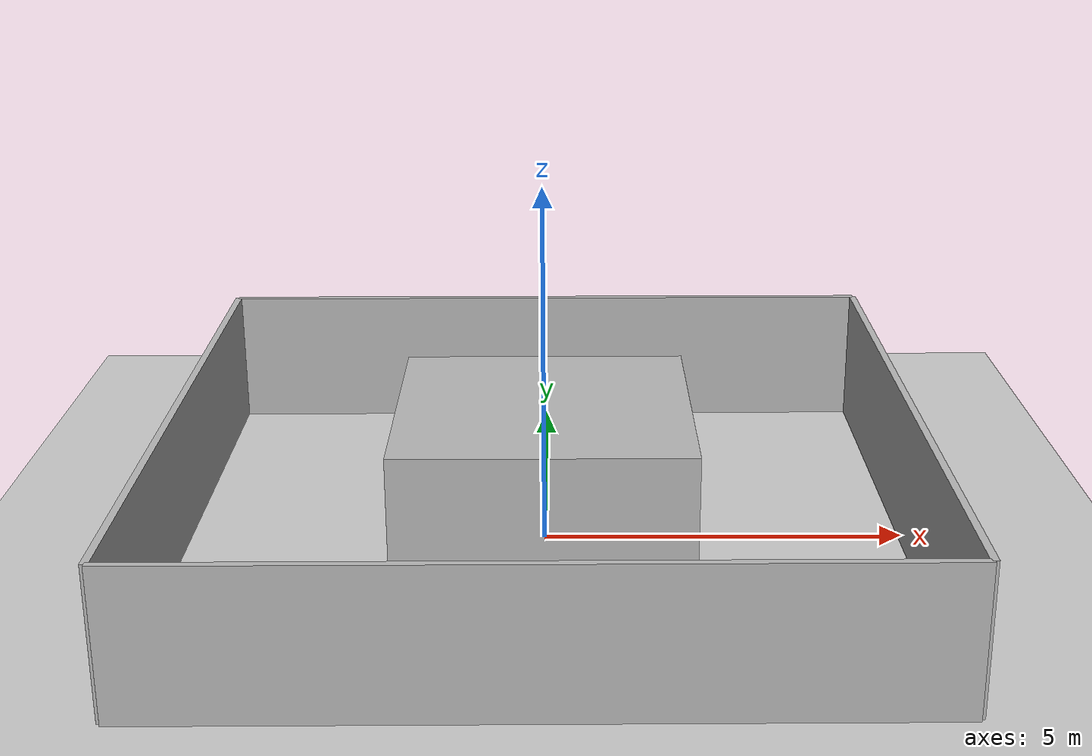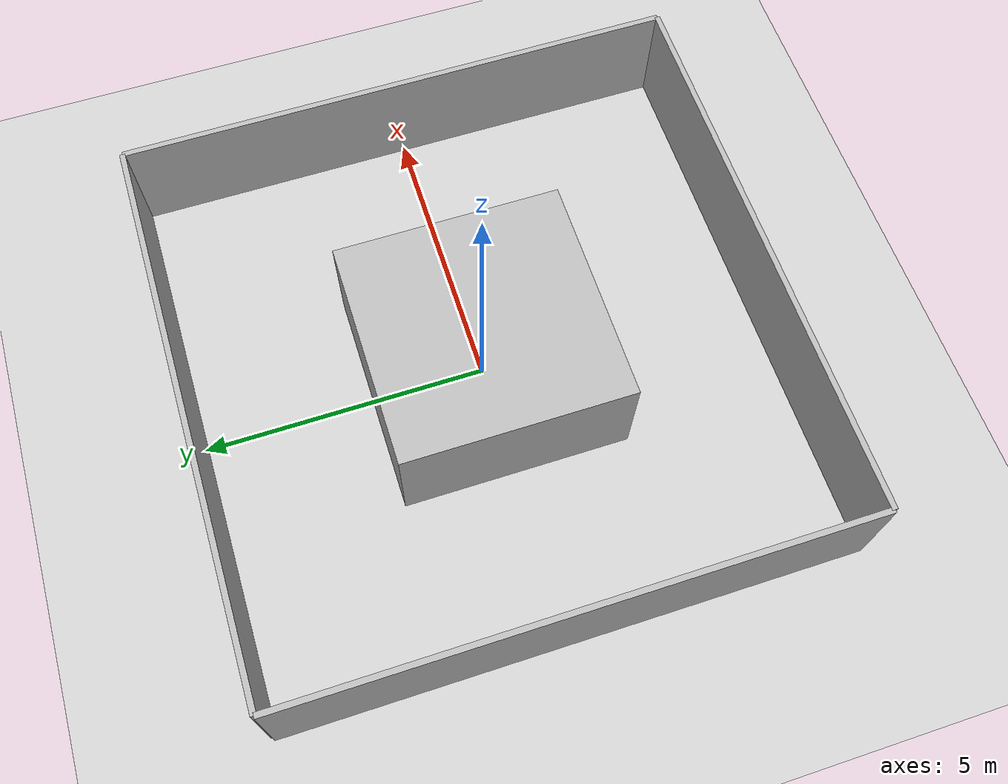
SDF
<?xml version="1.0" ?>
<sdf version="1.4">
  <!-- We use a custom world for the rrbot so that the camera angle is launched correctly -->

  <world name="default">

    <include>
      <uri>model://ground_plane</uri>
    </include>

    <!-- Global light source -->
    <include>
      <uri>model://sun</uri>
    </include>

    <include>
      <uri>model://arena_middle</uri>
    </include>

    <!-- Focus camera on tall pendulum -->
    <gui fullscreen='0'>
      <camera name='user_camera'>
        <pose>4.927360 -4.376610 3.740080 0.000000 0.275643 2.356190</pose>
        <view_controller>orbit</view_controller>
      </camera>
    </gui>

    <physics type='ode'>
      <max_step_size>0.01</max_step_size>
      <real_time_factor>50</real_time_factor>
      <max_contacts>10</max_contacts>
    </physics>
    <!--plugin filename="libworld_step.so" name="world_step"/-->
  </world>
</sdf>

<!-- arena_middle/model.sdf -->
<sdf version="1.5">

<model name="arena_simple">
  <static>true</static>
  <link name="wall1">
    <pose>-5 0 1 0 0 0</pose>
    <must_be_base_link>1</must_be_base_link>
    <collision name="collision">
       <geometry>
         <box>
           <size>0.1 10 2</size>  <!-- adjust this to whatever you want -->
        </box>
       </geometry>
     </collision>
     <visual name="visual">
       <cast_shadows>false</cast_shadows>
       <geometry>
         <box>
          <size>0.1 10 2</size>  <!-- adjust this to whatever you want -->
          </box>
      </geometry>
     </visual>
  </link>

  <link name="wall2">
    <pose>0 5 1 0 0 1.5707</pose>
    <must_be_base_link>1</must_be_base_link>
    <collision name="collision">
       <geometry>
         <box>
           <size>0.1 10 2</size>  <!-- adjust this to whatever you want -->
        </box>
       </geometry>
     </collision>
     <visual name="visual">
       <cast_shadows>false</cast_shadows>
       <geometry>
         <box>
          <size>0.1 10 2</size>  <!-- adjust this to whatever you want -->
          </box>
      </geometry>
     </visual>
    </link>

    <link name="wall3">
    <pose>0 -5 1 0 0 1.5707</pose>
    <must_be_base_link>1</must_be_base_link>
    <collision name="collision">
       <geometry>
         <box>
           <size>0.1 10 2</size>  <!-- adjust this to whatever you want -->
        </box>
       </geometry>
     </collision>
     <visual name="visual">
       <cast_shadows>false</cast_shadows>
       <geometry>
         <box>
          <size>0.1 10 2</size>  <!-- adjust this to whatever you want -->
          </box>
      </geometry>
     </visual>
    </link>

    <link name="wall4">
    <pose>5 0 1 0 0 0</pose>
    <must_be_base_link>1</must_be_base_link>
    <collision name="collision">
       <geometry>
         <box>
           <size>0.1 10 2</size>  <!-- adjust this to whatever you want -->
        </box>
       </geometry>
     </collision>
     <visual name="visual">
       <cast_shadows>false</cast_shadows>
       <geometry>
         <box>
          <size>0.1 10 2</size>  <!-- adjust this to whatever you want -->
          </box>
      </geometry>
     </visual>
    </link>

    <link name="centercube">
    <pose>0 0 1 0 0 0</pose>
    <must_be_base_link>1</must_be_base_link>
    <collision name="collision">
       <geometry>
         <box>
           <size>4 4 2</size>
        </box>
       </geometry>
     </collision>
     <visual name="visual">
       <cast_shadows>false</cast_shadows>
       <geometry>
         <box>
          <size>4 4 2</size>
          </box>
      </geometry>
     </visual>
    </link>
</model>
</sdf>
